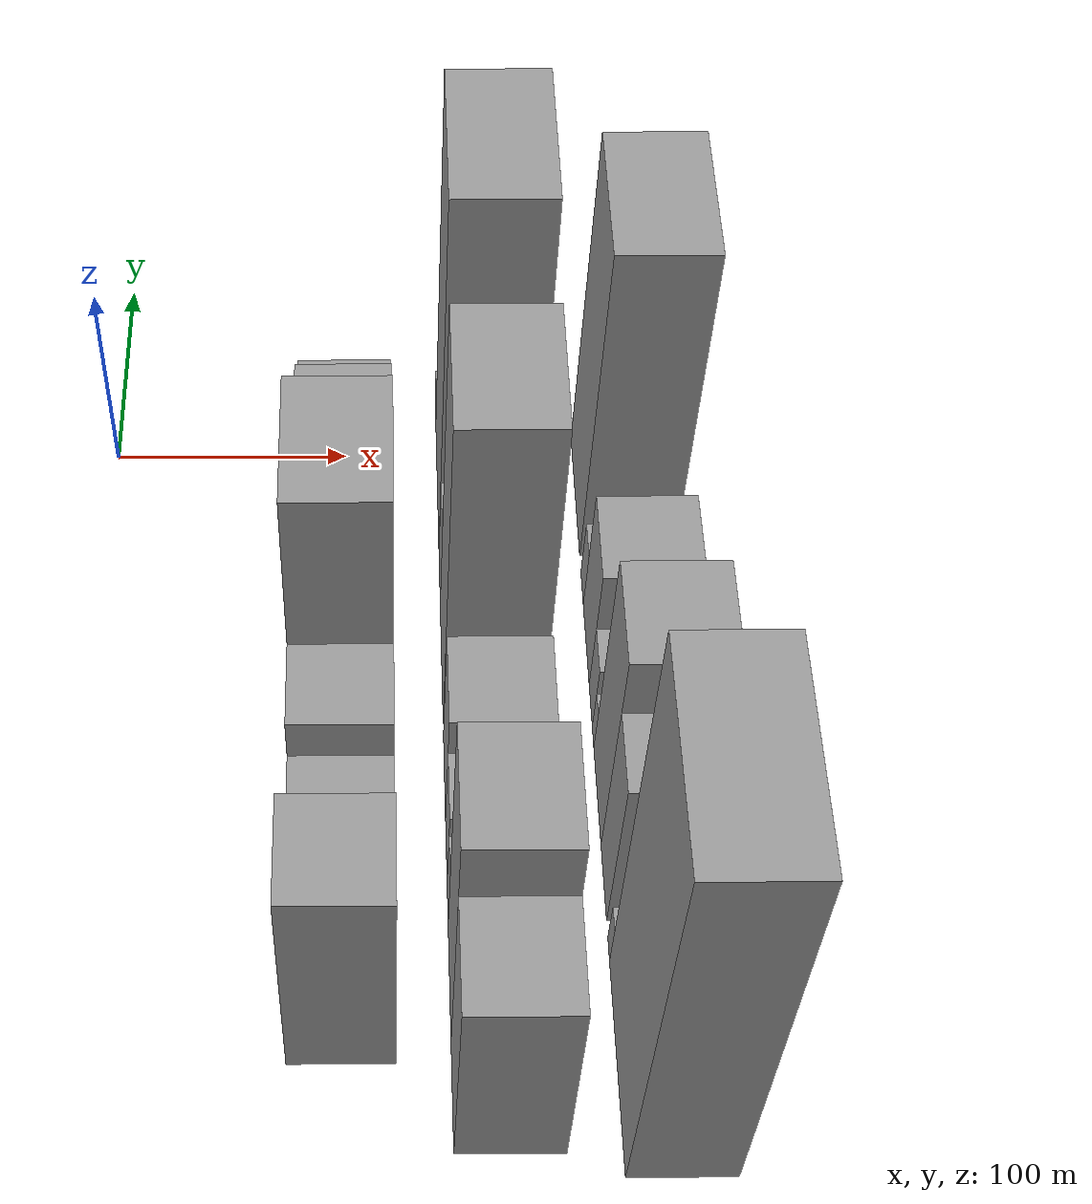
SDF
<sdf version="1.6">
 <world name="default">
  <model name="building_12">
   <static>1</static>
   <pose>100.0000 -267.0207 0 0.000000 0.000000 0.000000</pose>
   <link name="link">
    <pose>0 0 60.00 0 0 0</pose>
    <collision name="collision"><geometry><box><size>40.0000 41.7449 120.0000</size></box></geometry></collision>
    <visual name="visual">
     <cast_shadows>0</cast_shadows>
     <geometry><box><size>40.0000 41.7449 120.0000</size></box></geometry>
     <material>
      <script>
       <uri>model://grey_wall/materials/scripts</uri>
       <uri>model://grey_wall/materials/textures</uri>
       <name>vrc/grey_wall</name>
      </script>
     </material>
    </visual>
   </link>
  </model>
  <model name="building_13">
   <static>1</static>
   <pose>100.0000 -226.2781 0 0.000000 0.000000 0.000000</pose>
   <link name="link">
    <pose>0 0 19.50 0 0 0</pose>
    <collision name="collision"><geometry><box><size>40.0000 21.7403 39.0000</size></box></geometry></collision>
    <visual name="visual">
     <cast_shadows>0</cast_shadows>
     <geometry><box><size>40.0000 21.7403 39.0000</size></box></geometry>
     <material>
      <script>
       <uri>model://grey_wall/materials/scripts</uri>
       <uri>model://grey_wall/materials/textures</uri>
       <name>vrc/grey_wall</name>
      </script>
     </material>
    </visual>
   </link>
  </model>
  <model name="building_14">
   <static>1</static>
   <pose>100.0000 -198.2800 0 0.000000 0.000000 0.000000</pose>
   <link name="link">
    <pose>0 0 24.00 0 0 0</pose>
    <collision name="collision"><geometry><box><size>40.0000 24.2561 48.0000</size></box></geometry></collision>
    <visual name="visual">
     <cast_shadows>0</cast_shadows>
     <geometry><box><size>40.0000 24.2561 48.0000</size></box></geometry>
     <material>
      <script>
       <uri>model://grey_wall/materials/scripts</uri>
       <uri>model://grey_wall/materials/textures</uri>
       <name>vrc/grey_wall</name>
      </script>
     </material>
    </visual>
   </link>
  </model>
  <model name="building_15">
   <static>1</static>
   <pose>100.0000 -168.1110 0 0.000000 0.000000 0.000000</pose>
   <link name="link">
    <pose>0 0 34.50 0 0 0</pose>
    <collision name="collision"><geometry><box><size>40.0000 36.0818 69.0000</size></box></geometry></collision>
    <visual name="visual">
     <cast_shadows>0</cast_shadows>
     <geometry><box><size>40.0000 36.0818 69.0000</size></box></geometry>
     <material>
      <script>
       <uri>model://grey_wall/materials/scripts</uri>
       <uri>model://grey_wall/materials/textures</uri>
       <name>vrc/grey_wall</name>
      </script>
     </material>
    </visual>
   </link>
  </model>
  <model name="building_16">
   <static>1</static>
   <pose>100.0000 -120.7735 0 0.000000 0.000000 0.000000</pose>
   <link name="link">
    <pose>0 0 76.50 0 0 0</pose>
    <collision name="collision"><geometry><box><size>40.0000 58.5933 153.0000</size></box></geometry></collision>
    <visual name="visual">
     <cast_shadows>0</cast_shadows>
     <geometry><box><size>40.0000 58.5933 153.0000</size></box></geometry>
     <material>
      <script>
       <uri>model://grey_wall/materials/scripts</uri>
       <uri>model://grey_wall/materials/textures</uri>
       <name>vrc/grey_wall</name>
      </script>
     </material>
    </visual>
   </link>
  </model>
  <model name="building_17">
   <static>1</static>
   <pose>100.0000 -62.2903 0 0.000000 0.000000 0.000000</pose>
   <link name="link">
    <pose>0 0 49.50 0 0 0</pose>
    <collision name="collision"><geometry><box><size>40.0000 38.3731 99.0000</size></box></geometry></collision>
    <visual name="visual">
     <cast_shadows>0</cast_shadows>
     <geometry><box><size>40.0000 38.3731 99.0000</size></box></geometry>
     <material>
      <script>
       <uri>model://grey_wall/materials/scripts</uri>
       <uri>model://grey_wall/materials/textures</uri>
       <name>vrc/grey_wall</name>
      </script>
     </material>
    </visual>
   </link>
  </model>
  <model name="building_18">
   <static>1</static>
   <pose>100.0000 -25.6986 0 0.000000 0.000000 0.000000</pose>
   <link name="link">
    <pose>0 0 34.50 0 0 0</pose>
    <collision name="collision"><geometry><box><size>40.0000 34.8102 69.0000</size></box></geometry></collision>
    <visual name="visual">
     <cast_shadows>0</cast_shadows>
     <geometry><box><size>40.0000 34.8102 69.0000</size></box></geometry>
     <material>
      <script>
       <uri>model://grey_wall/materials/scripts</uri>
       <uri>model://grey_wall/materials/textures</uri>
       <name>vrc/grey_wall</name>
      </script>
     </material>
    </visual>
   </link>
  </model>
  <model name="building_19">
   <static>1</static>
   <pose>100.0000 7.2815 0 0.000000 0.000000 0.000000</pose>
   <link name="link">
    <pose>0 0 21.00 0 0 0</pose>
    <collision name="collision"><geometry><box><size>40.0000 23.1501 42.0000</size></box></geometry></collision>
    <visual name="visual">
     <cast_shadows>0</cast_shadows>
     <geometry><box><size>40.0000 23.1501 42.0000</size></box></geometry>
     <material>
      <script>
       <uri>model://grey_wall/materials/scripts</uri>
       <uri>model://grey_wall/materials/textures</uri>
       <name>vrc/grey_wall</name>
      </script>
     </material>
    </visual>
   </link>
  </model>
  <model name="building_47">
   <static>1</static>
   <pose>160.0000 -301.0077 0 0.000000 0.000000 0.000000</pose>
   <link name="link">
    <pose>0 0 55.50 0 0 0</pose>
    <collision name="collision"><geometry><box><size>40.0000 42.3825 111.0000</size></box></geometry></collision>
    <visual name="visual">
     <cast_shadows>0</cast_shadows>
     <geometry><box><size>40.0000 42.3825 111.0000</size></box></geometry>
     <material>
      <script>
       <uri>model://grey_wall/materials/scripts</uri>
       <uri>model://grey_wall/materials/textures</uri>
       <name>vrc/grey_wall</name>
      </script>
     </material>
    </visual>
   </link>
  </model>
  <model name="building_48">
   <static>1</static>
   <pose>160.0000 -256.0174 0 0.000000 0.000000 0.000000</pose>
   <link name="link">
    <pose>0 0 70.50 0 0 0</pose>
    <collision name="collision"><geometry><box><size>40.0000 47.5980 141.0000</size></box></geometry></collision>
    <visual name="visual">
     <cast_shadows>0</cast_shadows>
     <geometry><box><size>40.0000 47.5980 141.0000</size></box></geometry>
     <material>
      <script>
       <uri>model://grey_wall/materials/scripts</uri>
       <uri>model://grey_wall/materials/textures</uri>
       <name>vrc/grey_wall</name>
      </script>
     </material>
    </visual>
   </link>
  </model>
  <model name="building_49">
   <static>1</static>
   <pose>160.0000 -223.1073 0 0.000000 0.000000 0.000000</pose>
   <link name="link">
    <pose>0 0 18.00 0 0 0</pose>
    <collision name="collision"><geometry><box><size>40.0000 18.2224 36.0000</size></box></geometry></collision>
    <visual name="visual">
     <cast_shadows>0</cast_shadows>
     <geometry><box><size>40.0000 18.2224 36.0000</size></box></geometry>
     <material>
      <script>
       <uri>model://grey_wall/materials/scripts</uri>
       <uri>model://grey_wall/materials/textures</uri>
       <name>vrc/grey_wall</name>
      </script>
     </material>
    </visual>
   </link>
  </model>
  <model name="building_50">
   <static>1</static>
   <pose>160.0000 -199.8318 0 0.000000 0.000000 0.000000</pose>
   <link name="link">
    <pose>0 0 24.00 0 0 0</pose>
    <collision name="collision"><geometry><box><size>40.0000 28.3286 48.0000</size></box></geometry></collision>
    <visual name="visual">
     <cast_shadows>0</cast_shadows>
     <geometry><box><size>40.0000 28.3286 48.0000</size></box></geometry>
     <material>
      <script>
       <uri>model://grey_wall/materials/scripts</uri>
       <uri>model://grey_wall/materials/textures</uri>
       <name>vrc/grey_wall</name>
      </script>
     </material>
    </visual>
   </link>
  </model>
  <model name="building_51">
   <static>1</static>
   <pose>160.0000 -166.2779 0 0.000000 0.000000 0.000000</pose>
   <link name="link">
    <pose>0 0 34.50 0 0 0</pose>
    <collision name="collision"><geometry><box><size>40.0000 38.7792 69.0000</size></box></geometry></collision>
    <visual name="visual">
     <cast_shadows>0</cast_shadows>
     <geometry><box><size>40.0000 38.7792 69.0000</size></box></geometry>
     <material>
      <script>
       <uri>model://grey_wall/materials/scripts</uri>
       <uri>model://grey_wall/materials/textures</uri>
       <name>vrc/grey_wall</name>
      </script>
     </material>
    </visual>
   </link>
  </model>
  <model name="building_52">
   <static>1</static>
   <pose>160.0000 -111.5889 0 0.000000 0.000000 0.000000</pose>
   <link name="link">
    <pose>0 0 90.00 0 0 0</pose>
    <collision name="collision"><geometry><box><size>40.0000 58.5987 180.0000</size></box></geometry></collision>
    <visual name="visual">
     <cast_shadows>0</cast_shadows>
     <geometry><box><size>40.0000 58.5987 180.0000</size></box></geometry>
     <material>
      <script>
       <uri>model://grey_wall/materials/scripts</uri>
       <uri>model://grey_wall/materials/textures</uri>
       <name>vrc/grey_wall</name>
      </script>
     </material>
    </visual>
   </link>
  </model>
  <model name="building_53">
   <static>1</static>
   <pose>160.0000 -68.7185 0 0.000000 0.000000 0.000000</pose>
   <link name="link">
    <pose>0 0 24.00 0 0 0</pose>
    <collision name="collision"><geometry><box><size>40.0000 27.1422 48.0000</size></box></geometry></collision>
    <visual name="visual">
     <cast_shadows>0</cast_shadows>
     <geometry><box><size>40.0000 27.1422 48.0000</size></box></geometry>
     <material>
      <script>
       <uri>model://grey_wall/materials/scripts</uri>
       <uri>model://grey_wall/materials/textures</uri>
       <name>vrc/grey_wall</name>
      </script>
     </material>
    </visual>
   </link>
  </model>
  <model name="building_54">
   <static>1</static>
   <pose>160.0000 -17.2228 0 0.000000 0.000000 0.000000</pose>
   <link name="link">
    <pose>0 0 100.50 0 0 0</pose>
    <collision name="collision"><geometry><box><size>40.0000 69.8490 201.0000</size></box></geometry></collision>
    <visual name="visual">
     <cast_shadows>0</cast_shadows>
     <geometry><box><size>40.0000 69.8490 201.0000</size></box></geometry>
     <material>
      <script>
       <uri>model://grey_wall/materials/scripts</uri>
       <uri>model://grey_wall/materials/textures</uri>
       <name>vrc/grey_wall</name>
      </script>
     </material>
    </visual>
   </link>
  </model>
  <model name="building_55">
   <static>1</static>
   <pose>160.0000 22.1723 0 0.000000 0.000000 0.000000</pose>
   <link name="link">
    <pose>0 0 10.50 0 0 0</pose>
    <collision name="collision"><geometry><box><size>40.0000 8.9414 21.0000</size></box></geometry></collision>
    <visual name="visual">
     <cast_shadows>0</cast_shadows>
     <geometry><box><size>40.0000 8.9414 21.0000</size></box></geometry>
     <material>
      <script>
       <uri>model://grey_wall/materials/scripts</uri>
       <uri>model://grey_wall/materials/textures</uri>
       <name>vrc/grey_wall</name>
      </script>
     </material>
    </visual>
   </link>
  </model>
  <model name="building_56">
   <static>1</static>
   <pose>160.0000 30.2713 0 0.000000 0.000000 0.000000</pose>
   <link name="link">
    <pose>0 0 9.00 0 0 0</pose>
    <collision name="collision"><geometry><box><size>40.0000 7.2566 18.0000</size></box></geometry></collision>
    <visual name="visual">
     <cast_shadows>0</cast_shadows>
     <geometry><box><size>40.0000 7.2566 18.0000</size></box></geometry>
     <material>
      <script>
       <uri>model://grey_wall/materials/scripts</uri>
       <uri>model://grey_wall/materials/textures</uri>
       <name>vrc/grey_wall</name>
      </script>
     </material>
    </visual>
   </link>
  </model>
  <model name="building_81">
   <static>1</static>
   <pose>220.0000 -289.2649 0 0.000000 0.000000 0.000000</pose>
   <link name="link">
    <pose>0 0 106.50 0 0 0</pose>
    <collision name="collision"><geometry><box><size>40.0000 83.9325 213.0000</size></box></geometry></collision>
    <visual name="visual">
     <cast_shadows>0</cast_shadows>
     <geometry><box><size>40.0000 83.9325 213.0000</size></box></geometry>
     <material>
      <script>
       <uri>model://grey_wall/materials/scripts</uri>
       <uri>model://grey_wall/materials/textures</uri>
       <name>vrc/grey_wall</name>
      </script>
     </material>
    </visual>
   </link>
  </model>
  <model name="building_82">
   <static>1</static>
   <pose>220.0000 -242.3992 0 0.000000 0.000000 0.000000</pose>
   <link name="link">
    <pose>0 0 12.00 0 0 0</pose>
    <collision name="collision"><geometry><box><size>40.0000 9.7990 24.0000</size></box></geometry></collision>
    <visual name="visual">
     <cast_shadows>0</cast_shadows>
     <geometry><box><size>40.0000 9.7990 24.0000</size></box></geometry>
     <material>
      <script>
       <uri>model://grey_wall/materials/scripts</uri>
       <uri>model://grey_wall/materials/textures</uri>
       <name>vrc/grey_wall</name>
      </script>
     </material>
    </visual>
   </link>
  </model>
  <model name="building_83">
   <static>1</static>
   <pose>220.0000 -214.0777 0 0.000000 0.000000 0.000000</pose>
   <link name="link">
    <pose>0 0 46.50 0 0 0</pose>
    <collision name="collision"><geometry><box><size>40.0000 32.8441 93.0000</size></box></geometry></collision>
    <visual name="visual">
     <cast_shadows>0</cast_shadows>
     <geometry><box><size>40.0000 32.8441 93.0000</size></box></geometry>
     <material>
      <script>
       <uri>model://grey_wall/materials/scripts</uri>
       <uri>model://grey_wall/materials/textures</uri>
       <name>vrc/grey_wall</name>
      </script>
     </material>
    </visual>
   </link>
  </model>
  <model name="building_84">
   <static>1</static>
   <pose>220.0000 -175.2880 0 0.000000 0.000000 0.000000</pose>
   <link name="link">
    <pose>0 0 61.50 0 0 0</pose>
    <collision name="collision"><geometry><box><size>40.0000 44.7353 123.0000</size></box></geometry></collision>
    <visual name="visual">
     <cast_shadows>0</cast_shadows>
     <geometry><box><size>40.0000 44.7353 123.0000</size></box></geometry>
     <material>
      <script>
       <uri>model://grey_wall/materials/scripts</uri>
       <uri>model://grey_wall/materials/textures</uri>
       <name>vrc/grey_wall</name>
      </script>
     </material>
    </visual>
   </link>
  </model>
  <model name="building_85">
   <static>1</static>
   <pose>220.0000 -147.9562 0 0.000000 0.000000 0.000000</pose>
   <link name="link">
    <pose>0 0 12.00 0 0 0</pose>
    <collision name="collision"><geometry><box><size>40.0000 9.9283 24.0000</size></box></geometry></collision>
    <visual name="visual">
     <cast_shadows>0</cast_shadows>
     <geometry><box><size>40.0000 9.9283 24.0000</size></box></geometry>
     <material>
      <script>
       <uri>model://grey_wall/materials/scripts</uri>
       <uri>model://grey_wall/materials/textures</uri>
       <name>vrc/grey_wall</name>
      </script>
     </material>
    </visual>
   </link>
  </model>
  <model name="building_86">
   <static>1</static>
   <pose>220.0000 -132.7167 0 0.000000 0.000000 0.000000</pose>
   <link name="link">
    <pose>0 0 19.50 0 0 0</pose>
    <collision name="collision"><geometry><box><size>40.0000 20.5509 39.0000</size></box></geometry></collision>
    <visual name="visual">
     <cast_shadows>0</cast_shadows>
     <geometry><box><size>40.0000 20.5509 39.0000</size></box></geometry>
     <material>
      <script>
       <uri>model://grey_wall/materials/scripts</uri>
       <uri>model://grey_wall/materials/textures</uri>
       <name>vrc/grey_wall</name>
      </script>
     </material>
    </visual>
   </link>
  </model>
  <model name="building_87">
   <static>1</static>
   <pose>220.0000 -102.1624 0 0.000000 0.000000 0.000000</pose>
   <link name="link">
    <pose>0 0 36.00 0 0 0</pose>
    <collision name="collision"><geometry><box><size>40.0000 40.5577 72.0000</size></box></geometry></collision>
    <visual name="visual">
     <cast_shadows>0</cast_shadows>
     <geometry><box><size>40.0000 40.5577 72.0000</size></box></geometry>
     <material>
      <script>
       <uri>model://grey_wall/materials/scripts</uri>
       <uri>model://grey_wall/materials/textures</uri>
       <name>vrc/grey_wall</name>
      </script>
     </material>
    </visual>
   </link>
  </model>
  <model name="building_88">
   <static>1</static>
   <pose>220.0000 -73.4275 0 0.000000 0.000000 0.000000</pose>
   <link name="link">
    <pose>0 0 16.50 0 0 0</pose>
    <collision name="collision"><geometry><box><size>40.0000 16.9122 33.0000</size></box></geometry></collision>
    <visual name="visual">
     <cast_shadows>0</cast_shadows>
     <geometry><box><size>40.0000 16.9122 33.0000</size></box></geometry>
     <material>
      <script>
       <uri>model://grey_wall/materials/scripts</uri>
       <uri>model://grey_wall/materials/textures</uri>
       <name>vrc/grey_wall</name>
      </script>
     </material>
    </visual>
   </link>
  </model>
  <model name="building_89">
   <static>1</static>
   <pose>220.0000 -22.9643 0 0.000000 0.000000 0.000000</pose>
   <link name="link">
    <pose>0 0 88.50 0 0 0</pose>
    <collision name="collision"><geometry><box><size>40.0000 66.0141 177.0000</size></box></geometry></collision>
    <visual name="visual">
     <cast_shadows>0</cast_shadows>
     <geometry><box><size>40.0000 66.0141 177.0000</size></box></geometry>
     <material>
      <script>
       <uri>model://grey_wall/materials/scripts</uri>
       <uri>model://grey_wall/materials/textures</uri>
       <name>vrc/grey_wall</name>
      </script>
     </material>
    </visual>
   </link>
  </model>
 </world>
</sdf>
